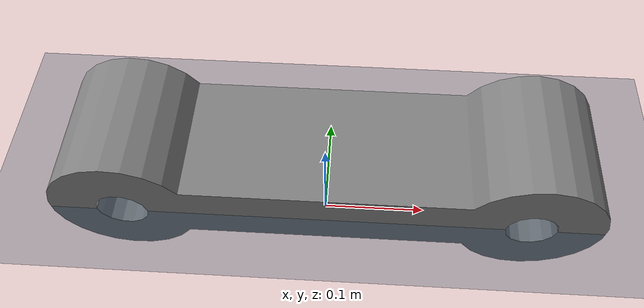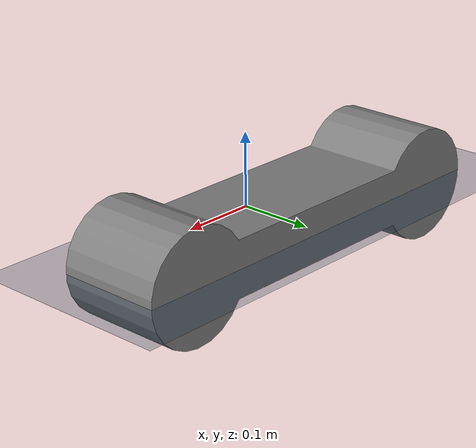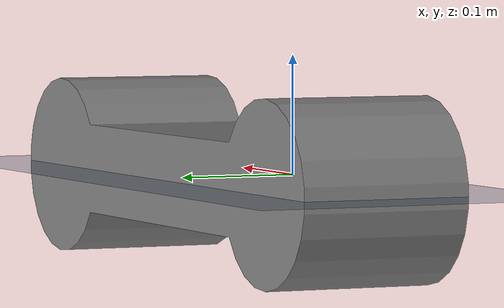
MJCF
<mujoco>
  <compiler angle = "degree" meshdir = "meshes" />

  <option gravity = "0 0 0" />

  <asset>
    <texture name="grid" type="2d" builtin="checker" width="512" height="512" rgb1=".1 .2 .3" rgb2=".2 .3 .4"/>
    <material name="grid" texture="grid" texrepeat="1 1" texuniform="true" reflectance=".2"/>
    <mesh file= "base_link.STL" scale="10 10 10"/>
  </asset>

  <worldbody>
     <light name="spotlight" mode="targetbodycom" target="base_link" diffuse=".8 .8 .8" specular="0.3 0.3 0.3" pos="0 -6 4" cutoff="30"/>
     <geom name="floor" size="0 0 .05" type="plane" material="grid" condim="3"/>

     <body name="base_link" pos="0 0 0" euler="0 0 0">
       <geom name="base_link" type="mesh" mesh="base_link"/>
       <inertial pos="3.865E-08 0.13049 -0.0010906"
		 mass="0.029923"
		 fullinertia="4.6443E-06 5.9625E-06 4.7898E-06 1.4595E-11 7.0006E-12 7.6579E-08"/>
       <joint type="free"/>

     </body>

  </worldbody>
</mujoco>
